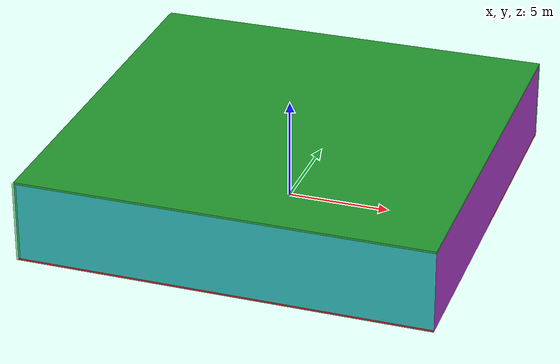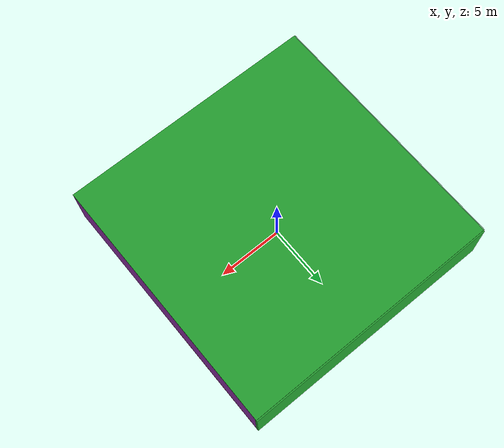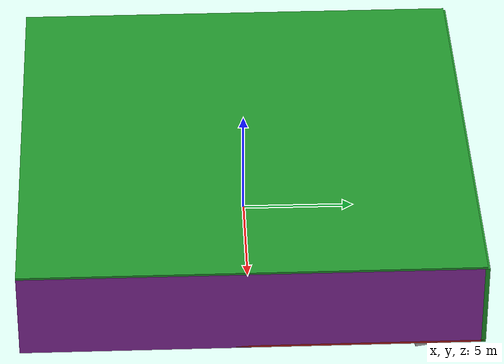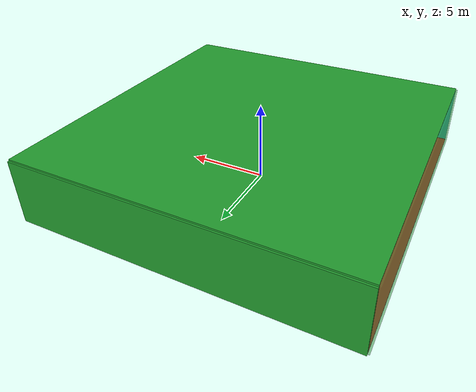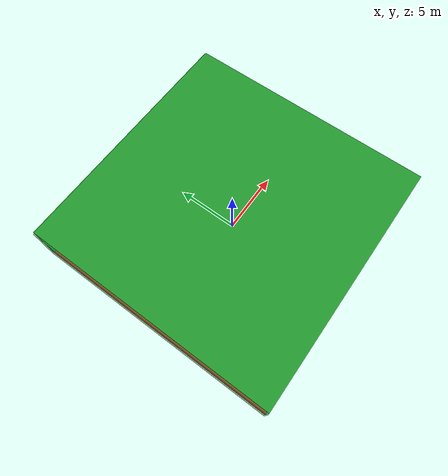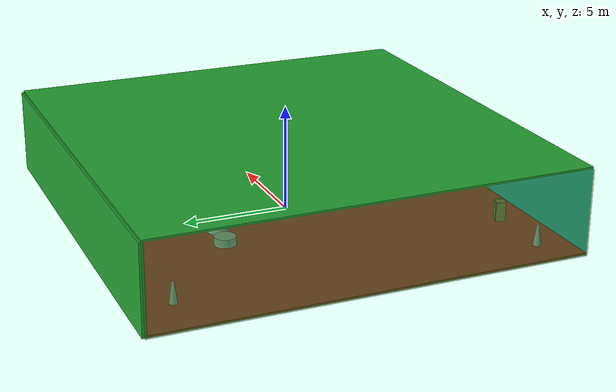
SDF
<sdf version="1.4">
 <world name="default">
  <physics type="ode">
   <max_step_size>0.001</max_step_size>
   <real_time_factor>1</real_time_factor>
   <real_time_update_rate>1000</real_time_update_rate>
   <gravity>0 0 -9.8</gravity>
  </physics>
  <scene><ambient>0.4 0.4 0.4 1</ambient><background>0.7 0.7 0.7 1</background><shadows>1</shadows></scene>
  <model name="Surrounding">
   <static>1</static>
   <link name="Ceiling">
    <collision name="Ceiling_Collision"><geometry><box><size>20 20 0.1</size></box></geometry></collision>
    <visual name="Ceiling_Visual">
     <geometry><box><size>20 20 0.1</size></box></geometry>
     <material>
      <script><uri>file://media/materials/scripts/gazebo.material</uri><name>Gazebo/Green</name></script>
     </material>
    </visual>
    <pose>0 0 4.05 0 0 0</pose>
   </link>
   <link name="Wall_South">
    <collision name="Wall_South_Collision">
     <geometry><box><size>20 0 4</size></box></geometry>
     <pose>0 0 2 0 -0 0</pose>
    </collision>
    <visual name="Wall_South_Visual">
     <pose>0 0 2 0 -0 0</pose>
     <geometry><box><size>20 0 4</size></box></geometry>
     <material>
      <script><uri>file://media/materials/scripts/gazebo.material</uri><name>Gazebo/Turquoise</name></script>
     </material>
    </visual>
    <velocity_decay><linear>0</linear><angular>0</angular></velocity_decay>
    <pose>0 -10 0 0 -0 0</pose>
   </link>
   <link name="Wall_East">
    <collision name="Wall_21_Collision">
     <geometry><box><size>20 0 4</size></box></geometry>
     <pose>0 0 2 0 -0 0</pose>
    </collision>
    <visual name="Wall_21_Visual">
     <pose>0 0 2 0 -0 0</pose>
     <geometry><box><size>20 0 4</size></box></geometry>
     <material>
      <script><uri>file://media/materials/scripts/gazebo.material</uri><name>Gazebo/PurpleGlow</name></script>
     </material>
    </visual>
    <velocity_decay><linear>0</linear><angular>0</angular></velocity_decay>
    <pose>10 0 0 0 -0 1.5708</pose>
   </link>
   <link name="Wall_North">
    <collision name="Wall_22_Collision">
     <geometry><box><size>20 0.2 4</size></box></geometry>
     <pose>0 0 2 0 -0 0</pose>
    </collision>
    <visual name="Wall_22_Visual">
     <pose>0 0 2 0 -0 0</pose>
     <geometry><box><size>20 0.2 4</size></box></geometry>
     <material>
      <script><uri>file://media/materials/scripts/gazebo.material</uri><name>Gazebo/GreenGlow</name></script>
     </material>
    </visual>
    <velocity_decay><linear>0</linear><angular>0</angular></velocity_decay>
    <pose>0 10 0 0 -0 0</pose>
   </link>
   <link name="Wall_West">
    <collision name="Wall_23_Collision">
     <geometry><box><size>20 0.2 4</size></box></geometry>
     <pose>0 0 2 0 -0 0</pose>
    </collision>
    <visual name="Wall_23_Visual">
     <pose>0 0 2 0 -0 0</pose>
     <geometry><box><size>20 0.2 4</size></box></geometry>
     <material>
      <script><uri>file://media/materials/scripts/gazebo.material</uri><name>Gazebo/GreenTransparent</name></script>
     </material>
    </visual>
    <velocity_decay><linear>0</linear><angular>0</angular></velocity_decay>
    <pose>-10 0 0 0 0 -1.5708</pose>
   </link>
   <link name="Ground_link">
    <collision name="collision">
     <pose>0 0 .05 0 -0 0</pose>
     <geometry><box><size>20 20 0.1</size></box></geometry>
    </collision>
    <visual name="visual">
     <pose>0 0 .05 0 -0 0</pose>
     <geometry><box><size>20 20 0.1</size></box></geometry>
     <material>
      <script><uri>file://media/materials/scripts/gazebo.material</uri><name>Gazebo/RedBright</name></script>
     </material>
    </visual>
   </link>
   <static>1</static>
  </model>
  <spherical_coordinates>
   <surface_model>EARTH_WGS84</surface_model>
   <latitude_deg>0</latitude_deg>
   <longitude_deg>0</longitude_deg>
   <elevation>0</elevation>
   <heading_deg>0</heading_deg>
  </spherical_coordinates>
  <light name="lightball_0" type="diffuse">
   <diffuse>0.8 0.8 0.8 1</diffuse>
   <specular>0.2 0.2 0.2 1</specular>
   <attenuation>
    <range>100</range>
    <constant>0.7</constant>
    <linear>0.01</linear>
    <quadratic>0.001</quadratic>
   </attenuation>
   <direction>-0.5 0.1 -0.9</direction>
   <pose>5.23913362615 3.47408560432 1.22471329599 0 0 0</pose>
  </light>
  <include>
   <uri>model://construction_cone</uri>
   <pose>-8.46472773113 -8.46955590655 0 0 0 0.35064546493</pose>
  </include>
  <include>
   <uri>model://construction_cone</uri>
   <pose>-7.74572692023 8.10000089147 0 0 0 1.61076320846</pose>
  </include>
  <include><uri>model://cabinet</uri><pose>-5.31741311023 -8.46157852907 0 0 0 1.22115357502</pose></include>
  <include>
   <uri>model://textured_shapes</uri>
   <pose>-1.60413848377 3.96859860519 0 0 0 1.43384857217</pose>
  </include>
  <include><uri>model://table</uri><pose>1.62112215438 -4.45242807376 0 0 0 0.0966855743613</pose></include>
  <include>
   <uri>model://construction_cone</uri>
   <pose>5.21803454192 8.01437524474 0 0 0 0.830577374586</pose>
  </include>
  <include>
   <uri>model://textured_shapes</uri>
   <pose>7.5507117815 7.26482565056 0 0 0 1.74072105483</pose>
  </include>
 </world>
</sdf>

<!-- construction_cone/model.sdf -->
<sdf version="1.5">
  <model name="Construction Cone">
    <link name="link">
      <collision name="collision">
        <geometry>
          <mesh>
            <scale>10 10 10</scale>
            <uri>file://isr-testbed/construction_cone/meshes/construction_cone.dae</uri>
          </mesh>
        </geometry>
      </collision>
      <visual name="visual">
        <geometry>
          <mesh>
            <scale>10 10 10</scale>
            <uri>file://isr-testbed/construction_cone/meshes/construction_cone.dae</uri>
          </mesh>
        </geometry>
      </visual>
    </link>
  </model>
</sdf>

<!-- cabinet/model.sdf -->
<sdf version="1.5">
  <model name="cabinet">
    <static>true</static>
    <link name="cabinet_bottom_plate">
      <inertial>
        <pose>0 0 -1 0 0 0</pose>
        <inertia>
          <ixx>2.050000</ixx>
          <ixy>0</ixy>
          <ixz>0</ixz>
          <iyy>2.050000</iyy>
          <iyz>0</iyz>
          <izz>2.050000</izz>
        </inertia>
        <mass>25.000000</mass>
      </inertial>
      <collision name="cabinet_bottom_plate_geom">
        <pose>0 0 0.010000 0 0 0</pose>
        <geometry>
          <box>
            <size>0.450000 0.450000 0.020000</size>
          </box>
        </geometry>
      </collision>
      <visual name="cabinet_bottom_plate_geom_visual">
        <pose>0 0 0.010000 0 0 0</pose>
        <geometry>
          <box>
            <size>0.450000 0.450000 0.020000</size>
          </box>
        </geometry>
        <material>
          <script>
            <uri>model://media/materials/scripts/gazebo.material</uri>
            <name>Gazebo/Wood</name>
          </script>
        </material>
      </visual>
      <collision name="cabinet_bottom_plate_geom_cabinet_back_plate">
        <pose>0.235000 0 0.510000 0 0 0</pose>
        <geometry>
          <box>
            <size>0.020000 0.450000 1.020000</size>
          </box>
        </geometry>
      </collision>
      <visual name="cabinet_bottom_plate_geom_cabinet_back_plate_visual">
        <pose>0.235000 0 0.510000 0 0 0</pose>
        <geometry>
          <box>
            <size>0.020000 0.450000 1.020000</size>
          </box>
        </geometry>
        <material>
          <script>
            <uri>model://media/materials/scripts/gazebo.material</uri>
            <name>Gazebo/Wood</name>
          </script>
        </material>
      </visual>
      <collision name="cabinet_bottom_plate_geom_cabinet_left_plate">
        <pose>0 0.235000 0.510000 0 0 0</pose>
        <geometry>
          <box>
            <size>0.450000 0.020000 1.020000</size>
          </box>
        </geometry>
      </collision>
      <visual name="cabinet_bottom_plate_geom_cabinet_left_plate_visual">
        <pose>0 0.235000 0.510000 0 0 0</pose>
        <geometry>
          <box>
            <size>0.450000 0.020000 1.020000</size>
          </box>
        </geometry>
        <material>
          <script>
            <uri>model://media/materials/scripts/gazebo.material</uri>
            <name>Gazebo/Wood</name>
          </script>
        </material>
      </visual>
      <collision name="cabinet_bottom_plate_geom_cabinet_middle_plate">
        <pose>0 0 0.510000 0 0 0</pose>
        <geometry>
          <box>
            <size>0.450000 0.450000 0.020000</size>
          </box>
        </geometry>
      </collision>
      <visual name="cabinet_bottom_plate_geom_cabinet_middle_plate_visual">
        <pose>0 0 0.510000 0 0 0</pose>
        <geometry>
          <box>
            <size>0.450000 0.450000 0.020000</size>
          </box>
        </geometry>
        <material>
          <script>
            <uri>model://media/materials/scripts/gazebo.material</uri>
            <name>Gazebo/Wood</name>
          </script>
        </material>
      </visual>
      <collision name="cabinet_bottom_plate_geom_cabinet_right_plate">
        <pose>0 -0.235000 0.510000 0 0 0</pose>
        <geometry>
          <box>
            <size>0.450000 0.020000 1.020000</size>
          </box>
        </geometry>
      </collision>
      <visual name="cabinet_bottom_plate_geom_cabinet_right_plate_visual">
        <pose>0 -0.235000 0.510000 0 0 0</pose>
        <geometry>
          <box>
            <size>0.450000 0.020000 1.020000</size>
          </box>
        </geometry>
        <material>
          <script>
            <uri>model://media/materials/scripts/gazebo.material</uri>
            <name>Gazebo/Wood</name>
          </script>
        </material>
      </visual>
      <collision name="cabinet_bottom_plate_geom_cabinet_top_plate">
        <pose>0 0 1.010000 0 0 0</pose>
        <geometry>
          <box>
            <size>0.450000 0.450000 0.020000</size>
          </box>
        </geometry>
      </collision>
      <visual name="cabinet_bottom_plate_geom_cabinet_top_plate_visual">
        <pose>0 0 1.010000 0 0 0</pose>
        <geometry>
          <box>
            <size>0.450000 0.450000 0.020000</size>
          </box>
        </geometry>
        <material>
          <script>
            <uri>model://media/materials/scripts/gazebo.material</uri>
            <name>Gazebo/Wood</name>
          </script>
        </material>
      </visual>
    </link>
  </model>
</sdf>

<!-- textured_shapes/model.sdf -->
<sdf version="1.6">
  <model name="textured_shapes">
    <pose>0 0 0.5 0 0 0</pose>
    <link name="box">
      <pose>0 -1.5 0 0 0 0</pose>
      <collision name="collision">
        <geometry>
          <box>
            <size>1 1 1</size>
          </box>
        </geometry>
      </collision>
      <visual name="visual">
        <geometry>
          <box>
            <size>1 1 1</size>
          </box>
        </geometry>
        <material>
          <script>
            <uri>model://../model_source/models/textured_shapes/materials/scripts</uri>
            <uri>model://../model_source/models/textured_shapes/materials/textures</uri>
            <name>TexturedShape/Squares</name>
          </script>
        </material>
      </visual>
    </link>
    <link name="sphere">
      <collision name="collision">
        <geometry>
          <sphere>
            <radius>0.5</radius>
          </sphere>
        </geometry>
      </collision>
      <visual name="visual">
        <geometry>
          <sphere>
            <radius>0.5</radius>
          </sphere>
        </geometry>
        <material>
          <script>
            <uri>model://../model_source/models/textured_shapes/materials/scripts</uri>
            <uri>model://../model_source/models/textured_shapes/materials/textures</uri>
            <name>TexturedShape/Squares</name>
          </script>
        </material>
      </visual>
    </link>
    <link name="cylinder">
      <pose>0 1.5 0 0 0 0</pose>
      <collision name="collision">
        <geometry>
          <cylinder>
            <radius>0.5</radius>
            <length>1</length>
          </cylinder>
        </geometry>
      </collision>
      <visual name="visual">
        <geometry>
          <cylinder>
            <radius>0.5</radius>
            <length>1</length>
          </cylinder>
        </geometry>
        <material>
          <script>
            <uri>model://../model_source/models/textured_shapes/materials/scripts</uri>
            <uri>model://../model_source/models/textured_shapes/materials/textures</uri>
            <name>TexturedShape/Squares</name>
          </script>
        </material>
      </visual>
    </link>
  </model>
</sdf>

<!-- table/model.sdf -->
<sdf version="1.5">
  <model name="table">
    <static>true</static>
    <link name="link">
      <collision name="surface">
        <pose>0 0 1.0 0 0 0</pose>
        <geometry>
          <box>
            <size>1.5 0.8 0.03</size>
          </box>
        </geometry>
        <surface>
          <friction>
            <ode>
              <mu>0.6</mu>
              <mu2>0.6</mu2>
            </ode>
          </friction>
        </surface>
      </collision>
      <visual name="visual1">
        <pose>0 0 1.0 0 0 0</pose>
        <geometry>
          <box>
            <size>1.5 0.8 0.03</size>
          </box>
        </geometry>
        <material>
          <script>
            <uri>model://media/materials/scripts/gazebo.material</uri>
            <name>Gazebo/Wood</name>
          </script>
        </material>
      </visual>
      <collision name="front_left_leg">
        <pose>0.68 0.38 0.5 0 0 0</pose>
        <geometry>
          <cylinder>
            <radius>0.02</radius>
            <length>1.0</length>
          </cylinder>
        </geometry>
      </collision>
      <visual name="front_left_leg">
        <pose>0.68 0.38 0.5 0 0 0</pose>
        <geometry>
          <cylinder>
            <radius>0.02</radius>
            <length>1.0</length>
          </cylinder>
        </geometry>
        <material>
          <script>
            <uri>model://media/materials/scripts/gazebo.material</uri>
            <name>Gazebo/Grey</name>
          </script>
        </material>
      </visual>
      <collision name="front_right_leg">
        <pose>0.68 -0.38 0.5 0 0 0</pose>
        <geometry>
          <cylinder>
            <radius>0.02</radius>
            <length>1.0</length>
          </cylinder>
        </geometry>
      </collision>
      <visual name="front_right_leg">
        <pose>0.68 -0.38 0.5 0 0 0</pose>
        <geometry>
          <cylinder>
            <radius>0.02</radius>
            <length>1.0</length>
          </cylinder>
        </geometry>
        <material>
          <script>
            <uri>model://media/materials/scripts/gazebo.material</uri>
            <name>Gazebo/Grey</name>
          </script>
        </material>
      </visual>
      <collision name="back_right_leg">
        <pose>-0.68 -0.38 0.5 0 0 0</pose>
        <geometry>
          <cylinder>
            <radius>0.02</radius>
            <length>1.0</length>
          </cylinder>
        </geometry>
      </collision>
      <visual name="back_right_leg">
        <pose>-0.68 -0.38 0.5 0 0 0</pose>
        <geometry>
          <cylinder>
            <radius>0.02</radius>
            <length>1.0</length>
          </cylinder>
        </geometry>
        <material>
          <script>
            <uri>model://media/materials/scripts/gazebo.material</uri>
            <name>Gazebo/Grey</name>
          </script>
        </material>
      </visual>
      <collision name="back_left_leg">
        <pose>-0.68 0.38 0.5 0 0 0</pose>
        <geometry>
          <cylinder>
            <radius>0.02</radius>
            <length>1.0</length>
          </cylinder>
        </geometry>
      </collision>
      <visual name="back_left_leg">
        <pose>-0.68 0.38 0.5 0 0 0</pose>
        <geometry>
          <cylinder>
            <radius>0.02</radius>
            <length>1.0</length>
          </cylinder>
        </geometry>
        <material>
          <script>
            <uri>model://media/materials/scripts/gazebo.material</uri>
            <name>Gazebo/Grey</name>
          </script>
        </material>
      </visual>
    </link>
  </model>
</sdf>
